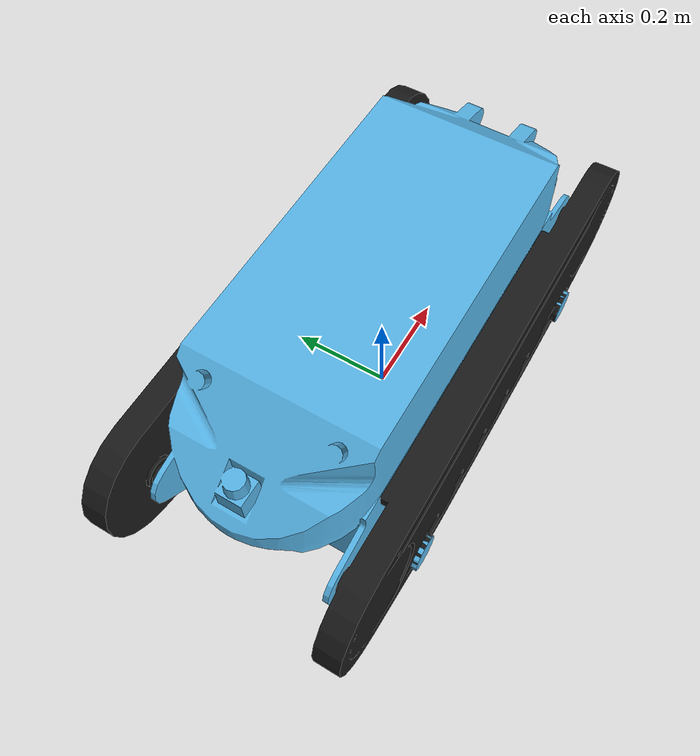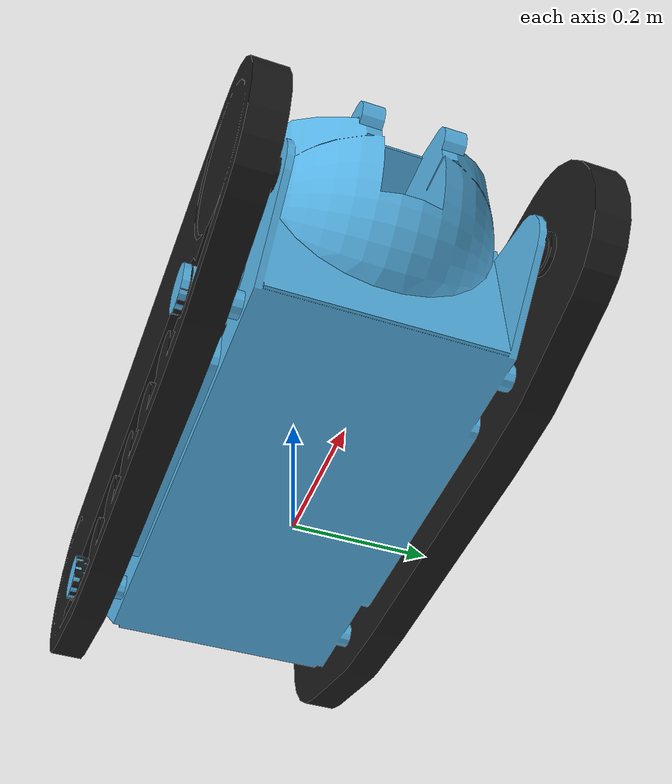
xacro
<?xml version="1.0"?>
<robot name="guardian_tracks" xmlns:xacro="http://www.ros.org/wiki/xacro">

  <!-- Robot mechanical and motor parameters -->
  <xacro:property name="PI" value="3.1415926535897931"/>
  <xacro:property name="wheel_offset_x" value="0.300" />    <!-- x,y,z in base_footprint CS -->
  <xacro:property name="wheel_offset_y" value="0.265" />
  <xacro:property name="wheel_offset_z" value="0.0" />
  <xacro:property name="wheel_joint_damping" value="0.0" />
  <xacro:property name="wheel_joint_friction" value="0.0" />

  <xacro:property name="wheel_joint_effort_limit" value="200.0" />
  <xacro:property name="wheel_joint_velocity_limit" value="200.0" />
  <xacro:property name="wheel_mechanical_reduction" value="1.0" />

  <xacro:property name="ptz_joint_effort_limit" value="100.0" />
  <xacro:property name="ptz_joint_velocity_limit" value="100.0"/>
  <xacro:property name="ptz_joint_friction" value="0.1" />
  <xacro:property name="ptz_joint_damping" value="0.1" />
  <xacro:property name="ptz_mechanical_reduction" value="1.0" />

  <!-- BASE FOOTPRINT -->
  <!-- base_footprint is a fictitious link(frame) that is on the ground right below base_link origin,
             navigation stack depends on this frame -->
  <link name="base_footprint">
      <visual>
          <origin xyz="0 0 0" rpy="0 0 0" />
          <geometry>
             <box size="0.001 0.001 0.001" />
          </geometry>
      </visual>

      <collision>
          <origin xyz="0 0 0" rpy="0 0 0" />
          <geometry>
            <box size="0.001 0.001 0.001" />
         </geometry>
     </collision>
  </link>

  <joint name="base_footprint_joint" type="fixed">
     <!--NB: While you would think this would make it go up, it is oddly reversed.
      This moves the joint to 0,0,0 where we want it for rviz, etc. -->
     <!-- origin xyz="0 0 0.130" rpy="0 0 0" / -->
     <origin xyz="0 0 0.069" rpy="0 0 0" />
     <parent link="base_footprint"/>
     <child link="base_link" />
  </joint>

  <!-- BASE_LINK (RED) -->
  <link name="base_link">
    <inertial>
      <mass value="95.0" />
      <origin xyz="0 0 0" />
      <inertia  ixx="3.737" ixy="0.008"  ixz="-0.144"  iyy="8.311"  iyz="-0.004"  izz="8.893" />
    </inertial>
    <visual>
       <origin xyz="0 0 0" rpy="0 0 0" />
       <geometry>
	 <mesh filename="package://guardian_description/meshes/chassis/v7/chassisV7.dae"/>
       </geometry>
    </visual>
    <collision>
       <origin xyz="0 0 0" rpy="0 0 0 " />
       <geometry>
         <mesh filename="package://guardian_description/meshes/chassis/v7/chassisV7.dae"/>
       </geometry>
    </collision>
  </link>

  <!-- LEFT TRACK (BLACK) -->
  <link name="left_track">
    <inertial>
      <mass value="1.250" />
      <origin xyz="0 0 0" />
      <inertia  ixx="0.0109375" ixy="0.0"  ixz="0.0"  iyy="0.021125"  iyz="0.0"  izz="0.0109375" />
    </inertial>
    <visual>
        <origin xyz="0 0 0" rpy="0 0 0" />
        <geometry>
	 <mesh filename="package://guardian_description/meshes/others/v5/trackV5_l.dae"/>
        </geometry>
	<material name="black">
  		<color rgba="0.1 0.1 0.1 1"/>
      	</material>
    </visual>
    <collision>
       <origin xyz="0 0 0" rpy="0 0 0" />
       <geometry>
         <mesh filename="package://guardian_description/meshes/others/v5/trackV5_l.dae"/>
       </geometry>
    </collision>
  </link>

  <joint name="joint_left_track" type="fixed">
    <parent link="base_link"/>
    <child link="left_track"/>
    <origin xyz="0.0 0.0 0.0" rpy="0 0 0" />
  </joint>

  <!-- RIGHT TRACK (BLACK) -->
  <link name="right_track">
    <inertial>
      <mass value="1.250" />
      <origin xyz="0 0 0" />
      <inertia  ixx="0.0109375" ixy="0.0"  ixz="0.0"  iyy="0.021125"  iyz="0.0"  izz="0.0109375" />
    </inertial>
    <visual>
       <origin xyz="0 0 0" rpy="0 0 0" />
       <geometry>
	 <mesh filename="package://guardian_description/meshes/others/v5/trackV5_l.dae"/>
       </geometry>
	<material name="black">
		<color rgba="0.1 0.1 0.1 1"/>
      	</material>
    </visual>
    <collision>
       <origin xyz="0 0 0" rpy="0 0 0" />
       <geometry>
         <mesh filename="package://guardian_description/meshes/others/v5/trackV5_l.dae"/>
       </geometry>
    </collision>
  </link>

  <joint name="joint_right_track" type="fixed">
    <parent link="base_link"/>
    <child link="right_track"/>
    <origin xyz="0.0 0.0 0.0" rpy="0 0 3.1415926535" />
  </joint>

  <!-- RPLIDAR SENSOR -->
  <joint name="laser_joint" type="fixed">
     <axis xyz="0 1 0" />
     <origin xyz="-0.43171 0 0.29163" rpy="0 0 ${PI}"/>
     <parent link="base_link"/>
     <child link="laser_link"/>
  </joint>
  <!-- Hokuyo Laser -->
  <link name="laser_link">
    <collision>
      <origin xyz="0 0 0" rpy="0 0 0"/>
      <geometry>
	         <box size="0.1 0.1 0.1"/>
      </geometry>
    </collision>

    <inertial>
      <mass value="1e-5" />
      <origin xyz="0 0 0" rpy="0 0 0"/>
      <inertia ixx="1e-6" ixy="0" ixz="0" iyy="1e-6" iyz="0" izz="1e-6" />
    </inertial>
  </link>

  <!-- Camera -->
  <joint name="camera_joint" type="fixed">
     <axis xyz="0 1 0" />
     <origin xyz="-0.43171 0 0.29163" rpy="0 0 0"/>
     <parent link="base_link"/>
     <child link="camera_link"/>
  </joint>
  <!-- Hokuyo Laser -->
  <link name="camera_link">
    <collision>
      <origin xyz="0 0 0" rpy="0 0 0"/>
      <geometry>
           <box size="0.1 0.1 0.1"/>
      </geometry>
    </collision>

    <inertial>
      <mass value="1e-5" />
      <origin xyz="0 0 0" rpy="0 0 0"/>
      <inertia ixx="1e-6" ixy="0" ixz="0" iyy="1e-6" iyz="0" izz="1e-6" />
    </inertial>
  </link>

  <!-- IMU SENSOR -->
  <joint name="imu_joint" type="fixed">
      <axis xyz="1 0 0"/>
      <origin xyz="0 0 0.2825"/>
      <parent link="base_link"/>
      <child link="imu_link"/>
  </joint>

  <link name="imu_link">
      <inertial>
        <mass value="0.001"/>
        <origin rpy="0 0 0" xyz="0 0 0"/>
        <inertia ixx="0.0001" ixy="0" ixz="0" iyy="0.000001" iyz="0" izz="0.0001"/>
      </inertial>
      <visual>
        <origin rpy="0 0 0" xyz="0 0 0"/>
        <geometry>
          <box size="0.001 0.001 0.001"/>
        </geometry>
      </visual>
      <collision>
        <origin rpy="0 0 0" xyz="0 0 0"/>
        <geometry>
          <box size=".001 .001 .001"/>
        </geometry>
      </collision>
  </link>

</robot>
